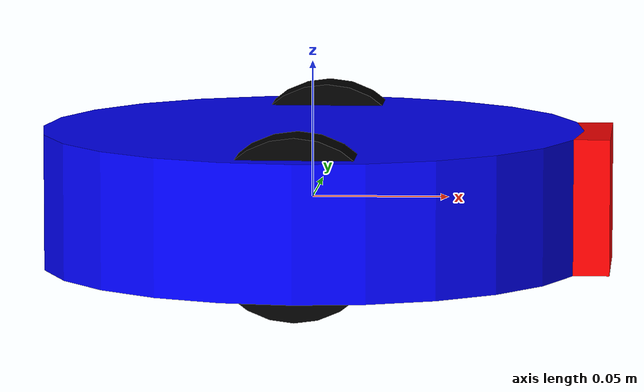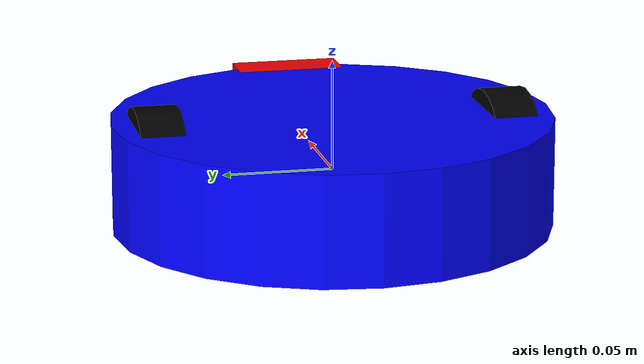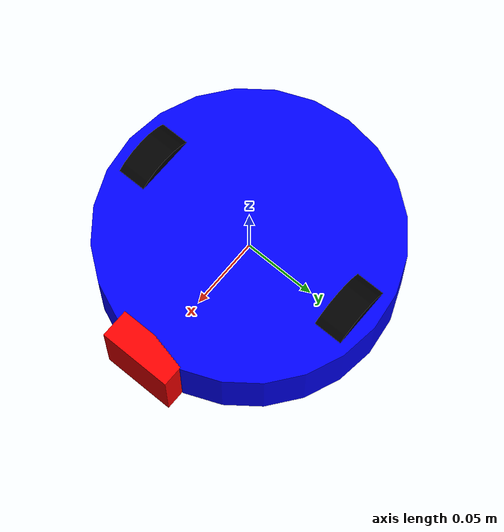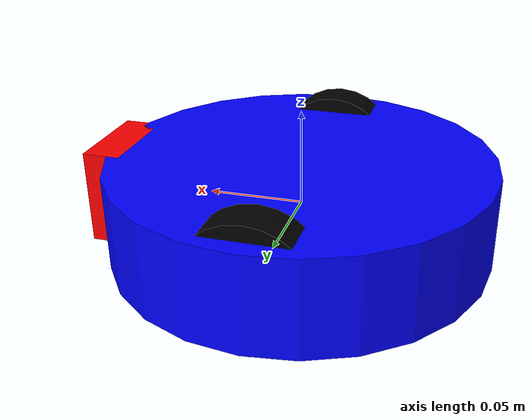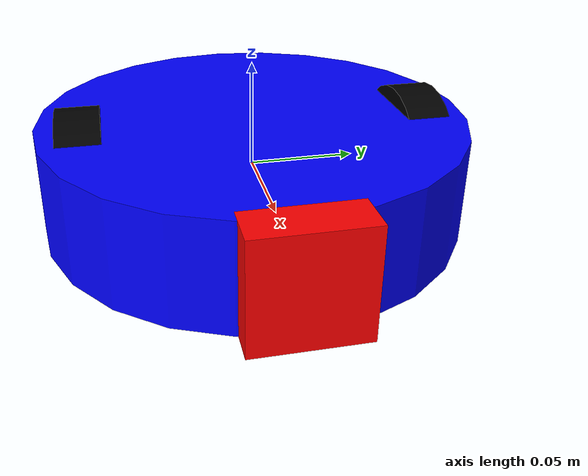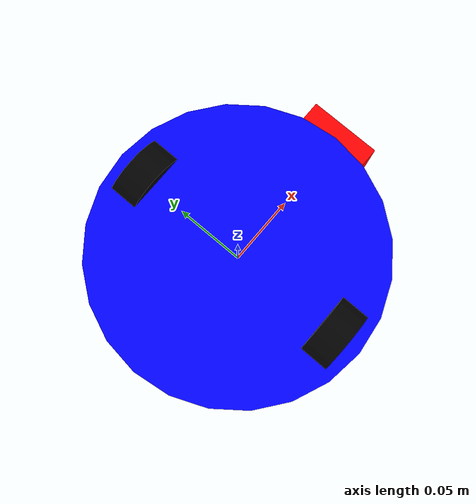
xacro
<?xml version="1.0"?>
<robot xmlns:xacro="http://www.ros.org/wiki/xacro" name="pi_robot">

  <!-- Constants -->
  <xacro:property name="base_radius" value="0.1" />
  <xacro:property name="base_height" value="0.05" />
  <xacro:property name="wheel_radius" value="0.033" />
  <xacro:property name="wheel_width" value="0.02" />
  <xacro:property name="wheel_base" value="0.16" />
  <xacro:property name="caster_radius" value="0.015" />

  <!-- Base Link -->
  <link name="base_link">
    <visual>
      <geometry>
        <cylinder radius="${base_radius}" length="${base_height}" />
      </geometry>
      <material name="blue">
        <color rgba="0.0 0.0 1.0 1.0" />
      </material>
    </visual>
    <collision>
      <geometry>
        <cylinder radius="${base_radius}" length="${base_height}" />
      </geometry>
    </collision>
  </link>

  <!-- Right Wheel -->
  <link name="right_wheel_link">
    <visual>
      <geometry>
        <cylinder radius="${wheel_radius}" length="${wheel_width}" />
      </geometry>
      <origin xyz="0 0 0" rpy="${pi/2} 0 0" />
      <material name="black">
        <color rgba="0.0 0.0 0.0 1.0" />
      </material>
    </visual>
    <collision>
      <geometry>
        <cylinder radius="${wheel_radius}" length="${wheel_width}" />
      </geometry>
      <origin xyz="0 0 0" rpy="${pi/2} 0 0" />
    </collision>
  </link>

  <joint name="right_wheel_joint" type="continuous">
    <parent link="base_link" />
    <child link="right_wheel_link" />
    <origin xyz="0 -${wheel_base/2} 0" rpy="0 0 0" />
    <axis xyz="0 1 0" />
  </joint>

  <!-- Left Wheel -->
  <link name="left_wheel_link">
    <visual>
      <geometry>
        <cylinder radius="${wheel_radius}" length="${wheel_width}" />
      </geometry>
      <origin xyz="0 0 0" rpy="${pi/2} 0 0" />
      <material name="black" />
    </visual>
    <collision>
      <geometry>
        <cylinder radius="${wheel_radius}" length="${wheel_width}" />
      </geometry>
      <origin xyz="0 0 0" rpy="${pi/2} 0 0" />
    </collision>
  </link>

  <joint name="left_wheel_joint" type="continuous">
    <parent link="base_link" />
    <child link="left_wheel_link" />
    <origin xyz="0 ${wheel_base/2} 0" rpy="0 0 0" />
    <axis xyz="0 1 0" />
  </joint>

  <!-- Caster Wheel -->
  <link name="caster_link">
    <visual>
      <geometry>
        <sphere radius="${caster_radius}" />
      </geometry>
      <material name="grey">
        <color rgba="0.5 0.5 0.5 1.0" />
      </material>
    </visual>
    <collision>
      <geometry>
        <sphere radius="${caster_radius}" />
      </geometry>
    </collision>
  </link>

  <joint name="caster_joint" type="fixed">
    <parent link="base_link" />
    <child link="caster_link" />
    <origin xyz="${base_radius * 0.8} 0 -${base_height/2 - caster_radius}" rpy="0 0 0" />
  </joint>

  <!-- Camera -->
  <link name="camera_link">
    <visual>
      <geometry>
        <box size="0.02 0.05 0.05" />
      </geometry>
      <material name="red">
        <color rgba="1.0 0.0 0.0 1.0" />
      </material>
    </visual>
  </link>

  <joint name="camera_joint" type="fixed">
    <parent link="base_link" />
    <child link="camera_link" />
    <origin xyz="${base_radius} 0 0" rpy="0 0 0" />
  </joint>

  <!-- Gazebo Plugins -->
  <gazebo>
    <plugin name="diff_drive_controller" filename="libgazebo_ros_diff_drive.so">
      <ros>
        <namespace>/</namespace>
      </ros>
      <left_joint>left_wheel_joint</left_joint>
      <right_joint>right_wheel_joint</right_joint>
      <wheel_separation>${wheel_base}</wheel_separation>
      <wheel_diameter>${2 * wheel_radius}</wheel_diameter>
      <max_wheel_torque>20</max_wheel_torque>
      <max_wheel_acceleration>1.0</max_wheel_acceleration>
      <command_topic>cmd_vel</command_topic>
      <publish_odom>true</publish_odom>
      <publish_odom_tf>true</publish_odom_tf>
      <publish_wheel_tf>true</publish_wheel_tf>
      <odometry_frame>odom</odometry_frame>
      <robot_base_frame>base_link</robot_base_frame>
    </plugin>

    <plugin name="camera_controller" filename="libgazebo_ros_camera.so">
        <ros>
            <namespace>/</namespace>
        </ros>
        <camera_name>pi_camera</camera_name>
        <frame_name>camera_link</frame_name>
        <hack_baseline>0.0</hack_baseline>
        <min_update_rate>10.0</min_update_rate>
        <image_topic_name>image_raw</image_topic_name>
        <camera_info_topic_name>camera_info</camera_info_topic_name>
    </plugin>
  </gazebo>

</robot>
